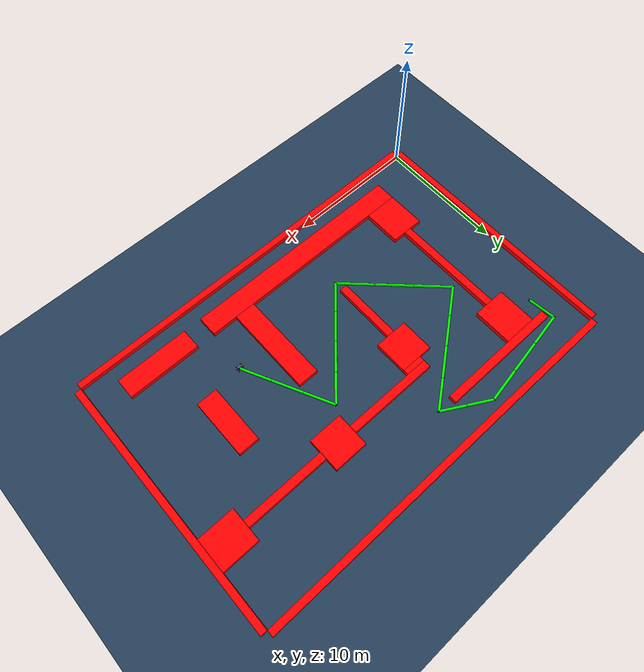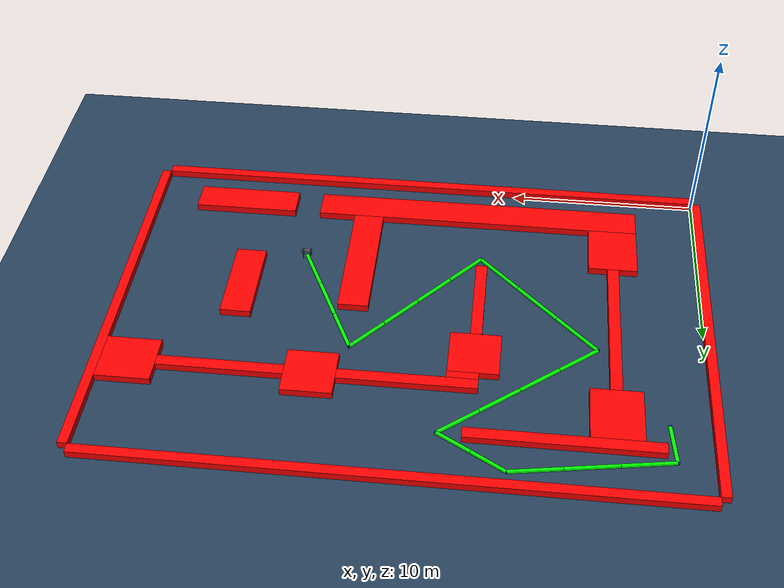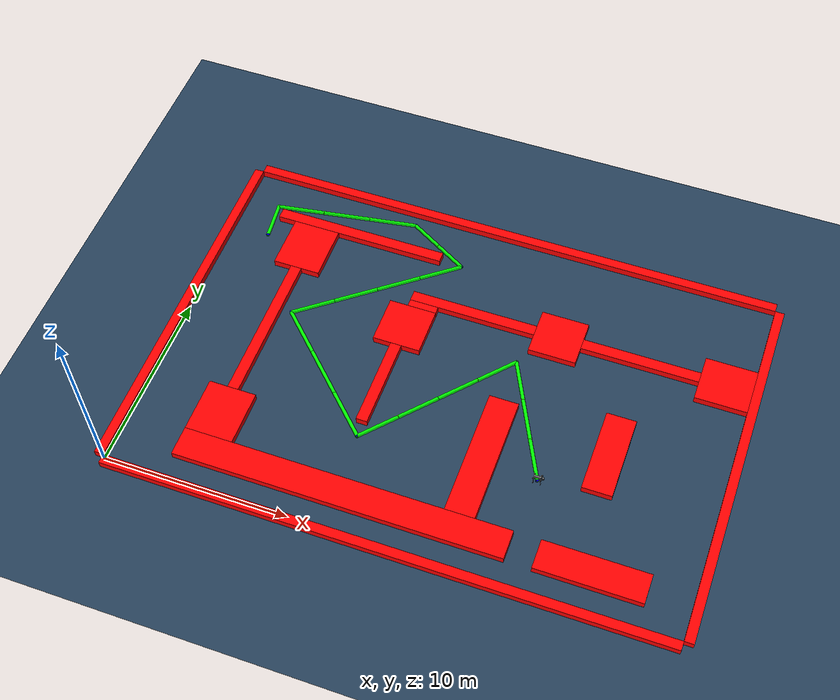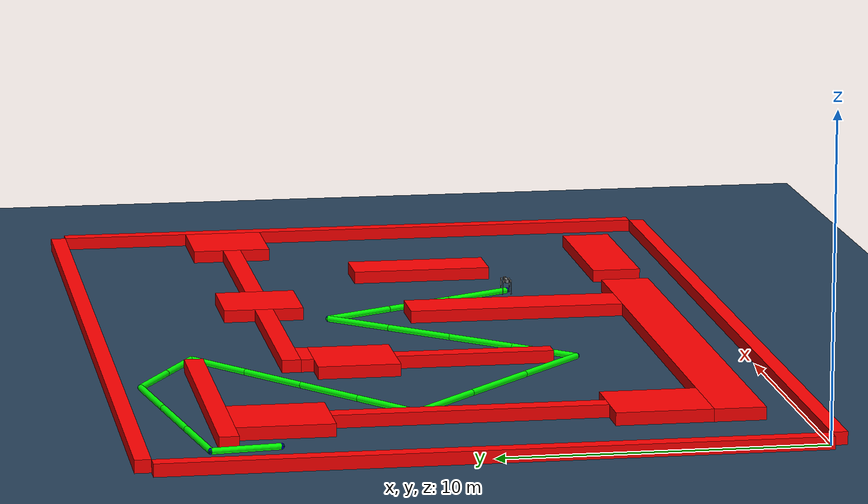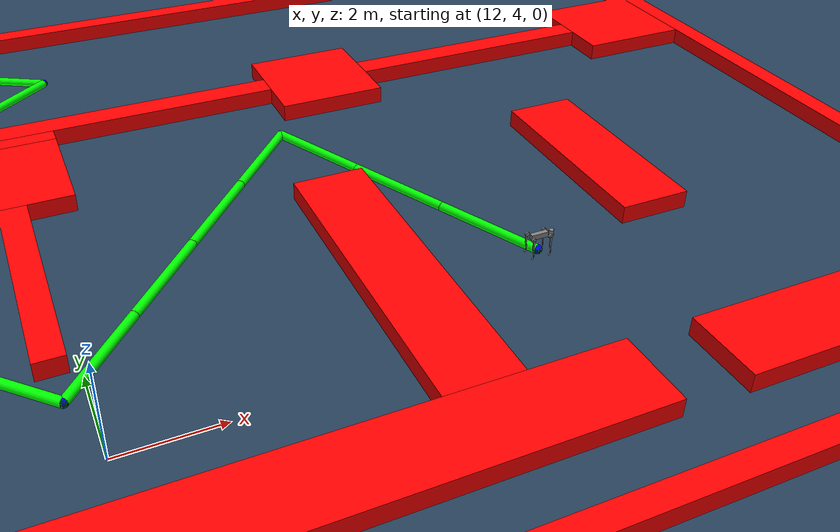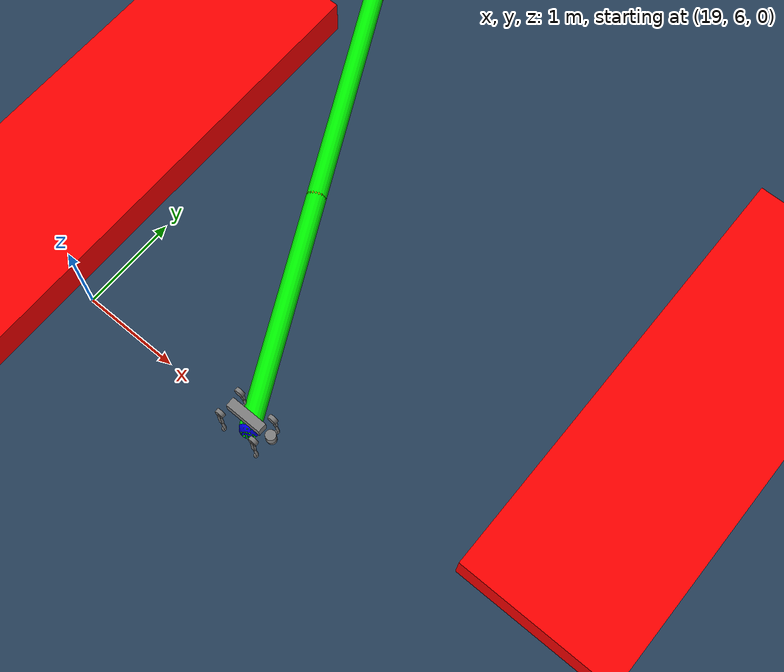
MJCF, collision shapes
<mujoco model="maze">

    <!-- import the unitree go2 -->
    <include file="go2_noel_maze.xml"/>

    <!-- create the environment which contains the obstacles -->
    <worldbody>
        <geom name="obstacle1" type="box" size="4.8 0.3 0.2" pos="7 17.5 0.2" rgba="1 0 0 1" contype="1" conaffinity="1"/>
        <geom name="obstacle2" type="box" size="1.3 1.5 0.2" pos="4.5 15.7 0.2" rgba="1 0 0 1" contype="1" conaffinity="1"/>
        <geom name="obstacle3" type="box" size="0.3 4.2 0.2" pos="4.5 10 0.2" rgba="1 0 0 1" contype="1" conaffinity="1"/>
        <geom name="obstacle4" type="box" size="1.3 1.5 0.2" pos="4.5 4.3 0.2" rgba="1 0 0 1" contype="1" conaffinity="1"/>
        <geom name="obstacle5" type="box" size="8.8 0.8 0.2" pos="12 2 0.2" rgba="1 0 0 1" contype="1" conaffinity="1"/>
        <geom name="obstacle6" type="box" size="0.3 2.5 0.2" pos="11.5 8.7 0.2" rgba="1 0 0 1" contype="1" conaffinity="1"/>
        <geom name="obstacle7" type="box" size="1.3 1.3 0.2" pos="11.5 12.5 0.2" rgba="1 0 0 1" contype="1" conaffinity="1"/>
        <geom name="obstacle8" type="box" size="3.5 0.3 0.2" pos="14.7 14.5 0.2" rgba="1 0 0 1" contype="1" conaffinity="1"/>
        <geom name="obstacle9" type="box" size="1.3 1.3 0.2" pos="19.5 14.5 0.2" rgba="1 0 0 1" contype="1" conaffinity="1"/>
        <geom name="obstacle10" type="box" size="3.2 0.3 0.2" pos="24 14.5 0.2" rgba="1 0 0 1" contype="1" conaffinity="1"/>
        <geom name="obstacle11" type="box" size="1.4 1.3 0.2" pos="28.6 14.5 0.2" rgba="1 0 0 1" contype="1" conaffinity="1"/>
        <geom name="obstacle12" type="box" size="0.8 3.5 0.2" pos="18 6.3 0.2" rgba="1 0 0 1" contype="1" conaffinity="1"/>
        <geom name="obstacle13" type="box" size="0.8 2.3 0.2" pos="24 8.5 0.2" rgba="1 0 0 1" contype="1" conaffinity="1"/>
        <geom name="obstacle14" type="box" size="2.8 0.8 0.2" pos="25 2 0.2" rgba="1 0 0 1" contype="1" conaffinity="1"/>
        <geom name="obstacle15" type="box" size="0.8 0.2 0.2" pos="12 14 0.2" rgba="1 0 0 1" contype="1" conaffinity="1"/>

        <geom name="bound_top" type="box" size="15 0.25 0.2" pos="15 20.25 0.2" rgba="1 0 0 1" contype="1" conaffinity="1"/>
        <geom name="bound_bottom" type="box" size="15 0.25 0.2" pos="15 -0.25 0.2" rgba="1 0 0 1" contype="1" conaffinity="1"/>
        <geom name="bound_left" type="box" size="0.25 10 0.2" pos="-0.25 10 0.2" rgba="1 0 0 1" contype="1" conaffinity="1"/>
        <geom name="bound_right" type="box" size="0.25 10 0.2" pos="30.25 10 0.2" rgba="1 0 0 1" contype="1" conaffinity="1"/>

        <!-- define nodes that are connected to each other -->

        <!-- define capsules for drawing path between nodes -->

    <geom name="node1" type="sphere" size="0.1" pos="21.0 6.0 0.1" rgba="0 0 1 0.5" contype="2" conaffinity="2"/>
<geom name="node2" type="sphere" size="0.1" pos="19.941629346373418 8.139887348134174 0.1" rgba="1 1 0 0.5" contype="2" conaffinity="2"/>
<geom name="node3" type="sphere" size="0.1" pos="18.88325869274684 10.279774696268348 0.1" rgba="1 1 0 0.5" contype="2" conaffinity="2"/>
<geom name="node4" type="sphere" size="0.1" pos="17.824888039120257 12.419662044402523 0.1" rgba="0 0 1 0.5" contype="2" conaffinity="2"/>
<geom name="node5" type="sphere" size="0.1" pos="16.261564230630103 10.666685668128109 0.1" rgba="1 1 0 0.5" contype="2" conaffinity="2"/>
<geom name="node6" type="sphere" size="0.1" pos="14.69824042213995 8.913709291853694 0.1" rgba="1 1 0 0.5" contype="2" conaffinity="2"/>
<geom name="node7" type="sphere" size="0.1" pos="13.134916613649798 7.160732915579279 0.1" rgba="1 1 0 0.5" contype="2" conaffinity="2"/>
<geom name="node8" type="sphere" size="0.1" pos="11.571592805159645 5.407756539304865 0.1" rgba="0 0 1 0.5" contype="2" conaffinity="2"/>
<geom name="node9" type="sphere" size="0.1" pos="9.497044300463442 7.42581985907564 0.1" rgba="1 1 0 0.5" contype="2" conaffinity="2"/>
<geom name="node10" type="sphere" size="0.1" pos="7.4224957957672375 9.443883178846416 0.1" rgba="1 1 0 0.5" contype="2" conaffinity="2"/>
<geom name="node11" type="sphere" size="0.1" pos="5.347947291071034 11.461946498617191 0.1" rgba="0 0 1 0.5" contype="2" conaffinity="2"/>
<geom name="node12" type="sphere" size="0.1" pos="7.260253817539075 12.9562852672541 0.1" rgba="1 1 0 0.5" contype="2" conaffinity="2"/>
<geom name="node13" type="sphere" size="0.1" pos="9.172560344007115 14.450624035891007 0.1" rgba="1 1 0 0.5" contype="2" conaffinity="2"/>
<geom name="node14" type="sphere" size="0.1" pos="11.084866870475157 15.944962804527915 0.1" rgba="1 1 0 0.5" contype="2" conaffinity="2"/>
<geom name="node15" type="sphere" size="0.1" pos="12.997173396943197 17.439301573164823 0.1" rgba="0 0 1 0.5" contype="2" conaffinity="2"/>
<geom name="node16" type="sphere" size="0.1" pos="11.304175926174473 18.402562911417768 0.1" rgba="1 1 0 0.5" contype="2" conaffinity="2"/>
<geom name="node17" type="sphere" size="0.1" pos="9.61117845540575 19.365824249670712 0.1" rgba="0 0 1 0.5" contype="2" conaffinity="2"/>
<geom name="node18" type="sphere" size="0.1" pos="6.995322287896137 18.938717703632783 0.1" rgba="1 1 0 0.5" contype="2" conaffinity="2"/>
<geom name="node19" type="sphere" size="0.1" pos="4.3794661203865255 18.511611157594857 0.1" rgba="1 1 0 0.5" contype="2" conaffinity="2"/>
<geom name="node20" type="sphere" size="0.1" pos="1.7636099528769142 18.084504611556927 0.1" rgba="0 0 1 0.5" contype="2" conaffinity="2"/>
<geom name="node21" type="sphere" size="0.1" pos="2.0 16.0 0.1" rgba="0 0 1 0.5" contype="2" conaffinity="2"/>
<geom name="cap1to2" type="capsule" fromto="21.0 6.0 0.1  19.941629346373418 8.139887348134174 0.1" size="0.1" rgba="0 1 0 0.5" contype="2" conaffinity="2"/>
<geom name="cap2to3" type="capsule" fromto="19.941629346373418 8.139887348134174 0.1  18.88325869274684 10.279774696268348 0.1" size="0.1" rgba="0 1 0 0.5" contype="2" conaffinity="2"/>
<geom name="cap3to4" type="capsule" fromto="18.88325869274684 10.279774696268348 0.1  17.824888039120257 12.419662044402523 0.1" size="0.1" rgba="0 1 0 0.5" contype="2" conaffinity="2"/>
<geom name="cap4to5" type="capsule" fromto="17.824888039120257 12.419662044402523 0.1  16.261564230630103 10.666685668128109 0.1" size="0.1" rgba="0 1 0 0.5" contype="2" conaffinity="2"/>
<geom name="cap5to6" type="capsule" fromto="16.261564230630103 10.666685668128109 0.1  14.69824042213995 8.913709291853694 0.1" size="0.1" rgba="0 1 0 0.5" contype="2" conaffinity="2"/>
<geom name="cap6to7" type="capsule" fromto="14.69824042213995 8.913709291853694 0.1  13.134916613649798 7.160732915579279 0.1" size="0.1" rgba="0 1 0 0.5" contype="2" conaffinity="2"/>
<geom name="cap7to8" type="capsule" fromto="13.134916613649798 7.160732915579279 0.1  11.571592805159645 5.407756539304865 0.1" size="0.1" rgba="0 1 0 0.5" contype="2" conaffinity="2"/>
<geom name="cap8to9" type="capsule" fromto="11.571592805159645 5.407756539304865 0.1  9.497044300463442 7.42581985907564 0.1" size="0.1" rgba="0 1 0 0.5" contype="2" conaffinity="2"/>
<geom name="cap9to10" type="capsule" fromto="9.497044300463442 7.42581985907564 0.1  7.4224957957672375 9.443883178846416 0.1" size="0.1" rgba="0 1 0 0.5" contype="2" conaffinity="2"/>
<geom name="cap10to11" type="capsule" fromto="7.4224957957672375 9.443883178846416 0.1  5.347947291071034 11.461946498617191 0.1" size="0.1" rgba="0 1 0 0.5" contype="2" conaffinity="2"/>
<geom name="cap11to12" type="capsule" fromto="5.347947291071034 11.461946498617191 0.1  7.260253817539075 12.9562852672541 0.1" size="0.1" rgba="0 1 0 0.5" contype="2" conaffinity="2"/>
<geom name="cap12to13" type="capsule" fromto="7.260253817539075 12.9562852672541 0.1  9.172560344007115 14.450624035891007 0.1" size="0.1" rgba="0 1 0 0.5" contype="2" conaffinity="2"/>
<geom name="cap13to14" type="capsule" fromto="9.172560344007115 14.450624035891007 0.1  11.084866870475157 15.944962804527915 0.1" size="0.1" rgba="0 1 0 0.5" contype="2" conaffinity="2"/>
<geom name="cap14to15" type="capsule" fromto="11.084866870475157 15.944962804527915 0.1  12.997173396943197 17.439301573164823 0.1" size="0.1" rgba="0 1 0 0.5" contype="2" conaffinity="2"/>
<geom name="cap15to16" type="capsule" fromto="12.997173396943197 17.439301573164823 0.1  11.304175926174473 18.402562911417768 0.1" size="0.1" rgba="0 1 0 0.5" contype="2" conaffinity="2"/>
<geom name="cap16to17" type="capsule" fromto="11.304175926174473 18.402562911417768 0.1  9.61117845540575 19.365824249670712 0.1" size="0.1" rgba="0 1 0 0.5" contype="2" conaffinity="2"/>
<geom name="cap17to18" type="capsule" fromto="9.61117845540575 19.365824249670712 0.1  6.995322287896137 18.938717703632783 0.1" size="0.1" rgba="0 1 0 0.5" contype="2" conaffinity="2"/>
<geom name="cap18to19" type="capsule" fromto="6.995322287896137 18.938717703632783 0.1  4.3794661203865255 18.511611157594857 0.1" size="0.1" rgba="0 1 0 0.5" contype="2" conaffinity="2"/>
<geom name="cap19to20" type="capsule" fromto="4.3794661203865255 18.511611157594857 0.1  1.7636099528769142 18.084504611556927 0.1" size="0.1" rgba="0 1 0 0.5" contype="2" conaffinity="2"/>
<geom name="cap20to21" type="capsule" fromto="1.7636099528769142 18.084504611556927 0.1  2.0 16.0 0.1" size="0.1" rgba="0 1 0 0.5" contype="2" conaffinity="2"/>
</worldbody>
</mujoco>

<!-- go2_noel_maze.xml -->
<mujoco model="go2">
  <compiler angle="radian" meshdir="assets" autolimits="true"/>

  <option cone="elliptic" impratio="100"/>

  <default>
    <default class="go2">
      <geom friction="0.6" margin="0.001" condim="1" contype="1" conaffinity="1"/>
      <joint axis="0 1 0" damping="2" armature="0.01" frictionloss="0.2"/>
      <motor ctrlrange="-23.7 23.7"/>
      <default class="abduction">
        <joint axis="1 0 0" range="-1.0472 1.0472"/>
      </default>
      <default class="hip">
        <default class="front_hip">
          <joint range="-1.5708 3.4907"/>
        </default>
        <default class="back_hip">
          <joint range="-0.5236 4.5379"/>
        </default>
      </default>
      <default class="knee">
        <joint range="-2.7227 -0.83776"/>
        <motor ctrlrange="-45.43 45.43"/>
      </default>
      <default class="visual">
        <geom type="mesh" contype="0" conaffinity="0" group="2"/>
      </default>
      <default class="collision">
        <geom group="3"/>
        <default class="foot">
          <geom size="0.022" pos="-0.002 0 -0.213" priority="1" solimp="0.015 1 0.022" condim="6"
            friction="0.8 0.02 0.01"/>
        </default>
      </default>
    </default>
  </default>

  <asset>
    <material name="metal" rgba=".9 .95 .95 1"/>
    <material name="black" rgba="0 0 0 1"/>
    <material name="white" rgba="1 1 1 1"/>
    <material name="gray" rgba="0.671705 0.692426 0.774270 1"/>

    <mesh file="base_0.obj"/>
    <mesh file="base_1.obj"/>
    <mesh file="base_2.obj"/>
    <mesh file="base_3.obj"/>
    <mesh file="base_4.obj"/>
    <mesh file="hip_0.obj"/>
    <mesh file="hip_1.obj"/>
    <mesh file="thigh_0.obj"/>
    <mesh file="thigh_1.obj"/>
    <mesh file="thigh_mirror_0.obj"/>
    <mesh file="thigh_mirror_1.obj"/>
    <mesh file="calf_0.obj"/>
    <mesh file="calf_1.obj"/>
    <mesh file="calf_mirror_0.obj"/>
    <mesh file="calf_mirror_1.obj"/>
    <mesh file="foot.obj"/>
  </asset>

  <worldbody>
    <body name="base" pos="21 6 0.445" childclass="go2">
      <inertial pos="0.021112 0 -0.005366" quat="-0.000543471 0.713435 -0.00173769 0.700719" mass="6.921"
        diaginertia="0.107027 0.0980771 0.0244531"/>
      <freejoint/>
      <geom mesh="base_0" material="black" class="visual"/>
      <geom mesh="base_1" material="black" class="visual"/>
      <geom mesh="base_2" material="black" class="visual"/>
      <geom mesh="base_3" material="white" class="visual"/>
      <geom mesh="base_4" material="gray" class="visual"/>
      <geom size="0.1881 0.04675 0.057" type="box" class="collision"/>
      <geom size="0.05 0.045" pos="0.285 0 0.01" type="cylinder" class="collision"/>
      <geom size="0.047" pos="0.293 0 -0.06" class="collision"/>
      <site name="imu" pos="-0.02557 0 0.04232"/>
      <body name="FL_hip" pos="0.1934 0.0465 0">
        <inertial pos="-0.0054 0.00194 -0.000105" quat="0.497014 0.499245 0.505462 0.498237" mass="0.678"
          diaginertia="0.00088403 0.000596003 0.000479967"/>
        <joint name="FL_hip_joint" class="abduction"/>
        <geom mesh="hip_0" material="metal" class="visual"/>
        <geom mesh="hip_1" material="gray" class="visual"/>
        <geom size="0.046 0.02" pos="0 0.08 0" quat="1 1 0 0" type="cylinder" class="collision"/>
        <body name="FL_thigh" pos="0 0.0955 0">
          <inertial pos="-0.00374 -0.0223 -0.0327" quat="0.829533 0.0847635 -0.0200632 0.551623" mass="1.152"
            diaginertia="0.00594973 0.00584149 0.000878787"/>
          <joint name="FL_thigh_joint" class="front_hip"/>
          <geom mesh="thigh_0" material="metal" class="visual"/>
          <geom mesh="thigh_1" material="gray" class="visual"/>
          <geom size="0.1065 0.01225 0.017" pos="0 0 -0.1065" quat="0.707107 0 0.707107 0" type="box" class="collision"/>
          <body name="FL_calf" pos="0 0 -0.213">
            <inertial pos="0.00629595 -0.000622121 -0.141417" quat="0.710672 0.00154099 -0.00450087 0.703508"
              mass="0.241352" diaginertia="0.0014901 0.00146356 5.31397e-05"/>
            <joint name="FL_calf_joint" class="knee"/>
            <geom mesh="calf_0" material="gray" class="visual"/>
            <geom mesh="calf_1" material="black" class="visual"/>
            <geom size="0.012 0.06" pos="0.008 0 -0.06" quat="0.994493 0 -0.104807 0" type="cylinder" class="collision"/>
            <geom size="0.011 0.0325" pos="0.02 0 -0.148" quat="0.999688 0 0.0249974 0" type="cylinder" class="collision"/>
            <geom pos="0 0 -0.213" mesh="foot" class="visual" material="black"/>
            <geom name="FL" class="foot"/>
          </body>
        </body>
      </body>
      <body name="FR_hip" pos="0.1934 -0.0465 0">
        <inertial pos="-0.0054 -0.00194 -0.000105" quat="0.498237 0.505462 0.499245 0.497014" mass="0.678"
          diaginertia="0.00088403 0.000596003 0.000479967"/>
        <joint name="FR_hip_joint" class="abduction"/>
        <geom mesh="hip_0" material="metal" class="visual" quat="4.63268e-05 1 0 0"/>
        <geom mesh="hip_1" material="gray" class="visual" quat="4.63268e-05 1 0 0"/>
        <geom size="0.046 0.02" pos="0 -0.08 0" quat="0.707107 0.707107 0 0" type="cylinder" class="collision"/>
        <body name="FR_thigh" pos="0 -0.0955 0">
          <inertial pos="-0.00374 0.0223 -0.0327" quat="0.551623 -0.0200632 0.0847635 0.829533" mass="1.152"
            diaginertia="0.00594973 0.00584149 0.000878787"/>
          <joint name="FR_thigh_joint" class="front_hip"/>
          <geom mesh="thigh_mirror_0" material="metal" class="visual"/>
          <geom mesh="thigh_mirror_1" material="gray" class="visual"/>
          <geom size="0.1065 0.01225 0.017" pos="0 0 -0.1065" quat="0.707107 0 0.707107 0" type="box" class="collision"/>
          <body name="FR_calf" pos="0 0 -0.213">
            <inertial pos="0.00629595 0.000622121 -0.141417" quat="0.703508 -0.00450087 0.00154099 0.710672"
              mass="0.241352" diaginertia="0.0014901 0.00146356 5.31397e-05"/>
            <joint name="FR_calf_joint" class="knee"/>
            <geom mesh="calf_mirror_0" material="gray" class="visual"/>
            <geom mesh="calf_mirror_1" material="black" class="visual"/>
            <geom size="0.013 0.06" pos="0.01 0 -0.06" quat="0.995004 0 -0.0998334 0" type="cylinder" class="collision"/>
            <geom size="0.011 0.0325" pos="0.02 0 -0.148" quat="0.999688 0 0.0249974 0" type="cylinder" class="collision"/>
            <geom pos="0 0 -0.213" mesh="foot" class="visual" material="black"/>
            <geom name="FR" class="foot"/>
          </body>
        </body>
      </body>
      <body name="RL_hip" pos="-0.1934 0.0465 0">
        <inertial pos="0.0054 0.00194 -0.000105" quat="0.505462 0.498237 0.497014 0.499245" mass="0.678"
          diaginertia="0.00088403 0.000596003 0.000479967"/>
        <joint name="RL_hip_joint" class="abduction"/>
        <geom mesh="hip_0" material="metal" class="visual" quat="4.63268e-05 0 1 0"/>
        <geom mesh="hip_1" material="gray" class="visual" quat="4.63268e-05 0 1 0"/>
        <geom size="0.046 0.02" pos="0 0.08 0" quat="0.707107 0.707107 0 0" type="cylinder" class="collision"/>
        <body name="RL_thigh" pos="0 0.0955 0">
          <inertial pos="-0.00374 -0.0223 -0.0327" quat="0.829533 0.0847635 -0.0200632 0.551623" mass="1.152"
            diaginertia="0.00594973 0.00584149 0.000878787"/>
          <joint name="RL_thigh_joint" class="back_hip"/>
          <geom mesh="thigh_0" material="metal" class="visual"/>
          <geom mesh="thigh_1" material="gray" class="visual"/>
          <geom size="0.1065 0.01225 0.017" pos="0 0 -0.1065" quat="0.707107 0 0.707107 0" type="box" class="collision"/>
          <body name="RL_calf" pos="0 0 -0.213">
            <inertial pos="0.00629595 -0.000622121 -0.141417" quat="0.710672 0.00154099 -0.00450087 0.703508"
              mass="0.241352" diaginertia="0.0014901 0.00146356 5.31397e-05"/>
            <joint name="RL_calf_joint" class="knee"/>
            <geom mesh="calf_0" material="gray" class="visual"/>
            <geom mesh="calf_1" material="black" class="visual"/>
            <geom size="0.013 0.06" pos="0.01 0 -0.06" quat="0.995004 0 -0.0998334 0" type="cylinder" class="collision"/>
            <geom size="0.011 0.0325" pos="0.02 0 -0.148" quat="0.999688 0 0.0249974 0" type="cylinder" class="collision"/>
            <geom pos="0 0 -0.213" mesh="foot" class="visual" material="black"/>
            <geom name="RL" class="foot"/>
          </body>
        </body>
      </body>
      <body name="RR_hip" pos="-0.1934 -0.0465 0">
        <inertial pos="0.0054 -0.00194 -0.000105" quat="0.499245 0.497014 0.498237 0.505462" mass="0.678"
          diaginertia="0.00088403 0.000596003 0.000479967"/>
        <joint name="RR_hip_joint" class="abduction"/>
        <geom mesh="hip_0" material="metal" class="visual" quat="2.14617e-09 4.63268e-05 4.63268e-05 -1"/>
        <geom mesh="hip_1" material="gray" class="visual" quat="2.14617e-09 4.63268e-05 4.63268e-05 -1"/>
        <geom size="0.046 0.02" pos="0 -0.08 0" quat="0.707107 0.707107 0 0" type="cylinder" class="collision"/>
        <body name="RR_thigh" pos="0 -0.0955 0">
          <inertial pos="-0.00374 0.0223 -0.0327" quat="0.551623 -0.0200632 0.0847635 0.829533" mass="1.152"
            diaginertia="0.00594973 0.00584149 0.000878787"/>
          <joint name="RR_thigh_joint" class="back_hip"/>
          <geom mesh="thigh_mirror_0" material="metal" class="visual"/>
          <geom mesh="thigh_mirror_1" material="gray" class="visual"/>
          <geom size="0.1065 0.01225 0.017" pos="0 0 -0.1065" quat="0.707107 0 0.707107 0" type="box" class="collision"/>
          <body name="RR_calf" pos="0 0 -0.213">
            <inertial pos="0.00629595 0.000622121 -0.141417" quat="0.703508 -0.00450087 0.00154099 0.710672"
              mass="0.241352" diaginertia="0.0014901 0.00146356 5.31397e-05"/>
            <joint name="RR_calf_joint" class="knee"/>
            <geom mesh="calf_mirror_0" material="gray" class="visual"/>
            <geom mesh="calf_mirror_1" material="black" class="visual"/>
            <geom size="0.013 0.06" pos="0.01 0 -0.06" quat="0.995004 0 -0.0998334 0" type="cylinder" class="collision"/>
            <geom size="0.011 0.0325" pos="0.02 0 -0.148" quat="0.999688 0 0.0249974 0" type="cylinder" class="collision"/>
            <geom pos="0 0 -0.213" mesh="foot" class="visual" material="black"/>
            <geom name="RR" class="foot"/>
          </body>
        </body>
      </body>
    </body>
  </worldbody>

  <actuator>
    <motor class="abduction" name="FL_hip" joint="FL_hip_joint"/>
    <motor class="hip" name="FL_thigh" joint="FL_thigh_joint"/>
    <motor class="knee" name="FL_calf" joint="FL_calf_joint"/>
    <motor class="abduction" name="FR_hip" joint="FR_hip_joint"/>
    <motor class="hip" name="FR_thigh" joint="FR_thigh_joint"/>
    <motor class="knee" name="FR_calf" joint="FR_calf_joint"/>
    <motor class="abduction" name="RL_hip" joint="RL_hip_joint"/>
    <motor class="hip" name="RL_thigh" joint="RL_thigh_joint"/>
    <motor class="knee" name="RL_calf" joint="RL_calf_joint"/>
    <motor class="abduction" name="RR_hip" joint="RR_hip_joint"/>
    <motor class="hip" name="RR_thigh" joint="RR_thigh_joint"/>
    <motor class="knee" name="RR_calf" joint="RR_calf_joint"/>
  </actuator>

  <asset>
    <texture type="skybox" builtin="gradient" rgb1="0.3 0.5 0.7" rgb2="0 0 0" width="512" height="3072"/>
    <texture type="2d" name="groundplane" builtin="checker" mark="edge" rgb1="0.2 0.3 0.4" rgb2="0.1 0.2 0.3"
      markrgb="0.8 0.8 0.8" width="300" height="300"/>
    <material name="groundplane" texture="groundplane" texuniform="true" texrepeat="5 5" reflectance="0.2"/>
  </asset>

  <worldbody>
    <light pos="0 0 1.5" dir="0 0 -1" directional="true"/>
    <geom name="floor" size="0 0 0.05" type="plane" material="groundplane"/>
   </worldbody>

  <keyframe>
    <key name="home" qpos="0 0 0.27 1 0 0 0 0 0.9 -1.8 0 0.9 -1.8 0 0.9 -1.8 0 0.9 -1.8"
      ctrl="0 0.9 -1.8 0 0.9 -1.8 0 0.9 -1.8 0 0.9 -1.8"/>
  </keyframe>
</mujoco>
